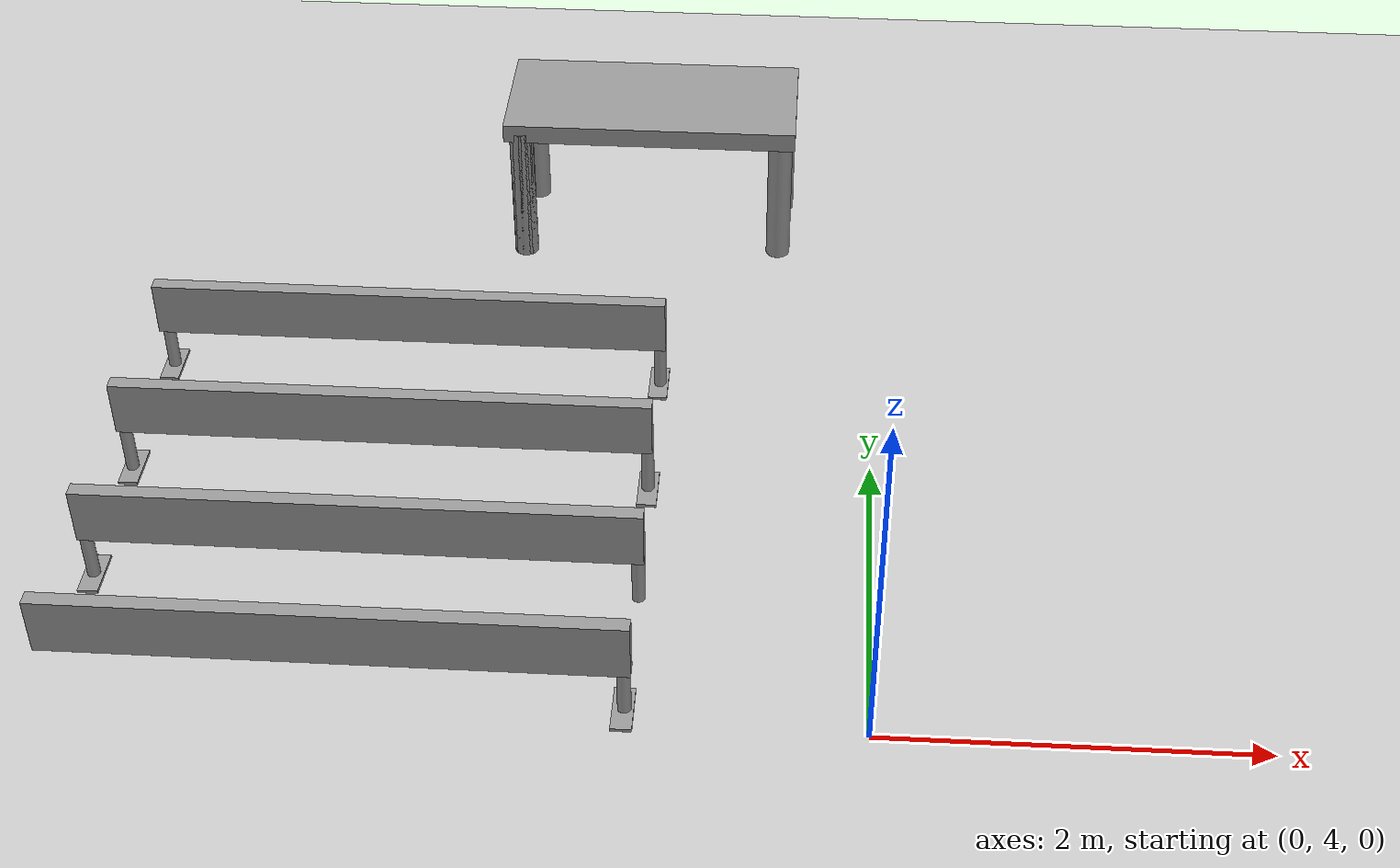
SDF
<sdf version="1.6">
 <world name="default">
  <model name="ground_plane">
   <static>1</static>
   <link name="link">
    <collision name="collision">
     <geometry><plane><normal>0 0 1</normal><size>100 100</size></plane></geometry>
     <surface><friction><ode><mu>100</mu><mu2>50</mu2></ode></friction></surface>
    </collision>
    <visual name="visual">
     <cast_shadows>0</cast_shadows>
     <geometry><plane><normal>0 0 1</normal><size>100 100</size></plane></geometry>
     <material>
      <script><uri>file://media/materials/scripts/gazebo.material</uri><name>Gazebo/Grey</name></script>
     </material>
    </visual>
   </link>
  </model>
  <model name="table">
   <link name="link_0">
    <pose>1.8055 0.833362 1.52998 0 -0 0</pose>
    <inertial>
     <mass>0.45487</mass>
     <inertia>
      <ixx>0.089863</ixx>
      <ixy>0</ixy>
      <ixz>0</ixz>
      <iyy>0.241732</iyy>
      <iyz>0</iyz>
      <izz>0.330549</izz>
     </inertia>
    </inertial>
    <visual name="visual">
     <geometry><box><size>1.8 0.8 0.117454</size></box></geometry>
     <material>
      <lighting>1</lighting>
      <script><uri>file://media/materials/scripts/gazebo.material</uri><name>Gazebo/Grey</name></script>
      <ambient>0.3 0.3 0.3 1</ambient>
      <diffuse>0.7 0.7 0.7 1</diffuse>
      <specular>0.01 0.01 0.01 1</specular>
      <emissive>0 0 0 1</emissive>
      <shader type="vertex"><normal_map>__default__</normal_map></shader>
     </material>
    </visual>
    <collision name="collision">
     <geometry><box><size>1.8 0.8 0.117454</size></box></geometry>
     <surface>
      <friction>
       <ode><mu>1</mu><mu2>1</mu2><fdir1>0 0 0</fdir1><slip1>0</slip1><slip2>0</slip2></ode>
       <torsional>
        <coefficient>1</coefficient>
        <patch_radius>0</patch_radius>
        <surface_radius>0</surface_radius>
        <use_patch_radius>1</use_patch_radius>
        <ode><slip>0</slip></ode>
       </torsional>
      </friction>
      <bounce><restitution_coefficient>0</restitution_coefficient><threshold>1e+06</threshold></bounce>
      <contact>
       <collide_without_contact>0</collide_without_contact>
       <collide_without_contact_bitmask>1</collide_without_contact_bitmask>
       <collide_bitmask>1</collide_bitmask>
       <ode>
        <soft_cfm>0</soft_cfm>
        <soft_erp>0.2</soft_erp>
        <kp>1e+13</kp>
        <kd>1</kd>
        <max_vel>0.01</max_vel>
        <min_depth>0</min_depth>
       </ode>
       <bullet>
        <split_impulse>1</split_impulse>
        <split_impulse_penetration_threshold>-0.01</split_impulse_penetration_threshold>
        <soft_cfm>0</soft_cfm>
        <soft_erp>0.2</soft_erp>
        <kp>1e+13</kp>
        <kd>1</kd>
       </bullet>
      </contact>
     </surface>
    </collision>
   </link>
   <link name="link_1">
    <pose>1.00734 0.496856 1.07514 0 -0 0</pose>
    <inertial>
     <mass>0.0339085</mass>
     <inertia>
      <ixx>0.00689116</ixx>
      <ixy>0</ixy>
      <ixz>0</ixz>
      <iyy>0.00689116</iyy>
      <iyz>0</iyz>
      <izz>9.234e-05</izz>
     </inertia>
    </inertial>
    <visual name="visual">
     <geometry><cylinder><radius>0.073807</radius><length>0.900001</length></cylinder></geometry>
     <material>
      <lighting>1</lighting>
      <script><uri>file://media/materials/scripts/gazebo.material</uri><name>Gazebo/Grey</name></script>
      <ambient>0.3 0.3 0.3 1</ambient>
      <diffuse>0.7 0.7 0.7 1</diffuse>
      <specular>0.01 0.01 0.01 1</specular>
      <emissive>0 0 0 1</emissive>
      <shader type="vertex"><normal_map>__default__</normal_map></shader>
     </material>
    </visual>
    <visual name="ModelPreview_0::link_1::visual_1">
     <geometry><cylinder><radius>0.073807</radius><length>0.9</length></cylinder></geometry>
     <material>
      <lighting>1</lighting>
      <script><uri>file://media/materials/scripts/gazebo.material</uri><name>Gazebo/Grey</name></script>
      <ambient>0.3 0.3 0.3 1</ambient>
      <diffuse>0.7 0.7 0.7 1</diffuse>
      <specular>0.01 0.01 0.01 1</specular>
      <emissive>0 0 0 1</emissive>
      <shader type="vertex"><normal_map>__default__</normal_map></shader>
     </material>
    </visual>
    <collision name="collision">
     <geometry><cylinder><radius>0.073807</radius><length>0.900001</length></cylinder></geometry>
     <surface>
      <friction>
       <ode><mu>1</mu><mu2>1</mu2><fdir1>0 0 0</fdir1><slip1>0</slip1><slip2>0</slip2></ode>
       <torsional>
        <coefficient>1</coefficient>
        <patch_radius>0</patch_radius>
        <surface_radius>0</surface_radius>
        <use_patch_radius>1</use_patch_radius>
        <ode><slip>0</slip></ode>
       </torsional>
      </friction>
      <bounce><restitution_coefficient>0</restitution_coefficient><threshold>1e+06</threshold></bounce>
      <contact>
       <collide_without_contact>0</collide_without_contact>
       <collide_without_contact_bitmask>1</collide_without_contact_bitmask>
       <collide_bitmask>1</collide_bitmask>
       <ode>
        <soft_cfm>0</soft_cfm>
        <soft_erp>0.2</soft_erp>
        <kp>1e+13</kp>
        <kd>1</kd>
        <max_vel>0.01</max_vel>
        <min_depth>0</min_depth>
       </ode>
       <bullet>
        <split_impulse>1</split_impulse>
        <split_impulse_penetration_threshold>-0.01</split_impulse_penetration_threshold>
        <soft_cfm>0</soft_cfm>
        <soft_erp>0.2</soft_erp>
        <kp>1e+13</kp>
        <kd>1</kd>
       </bullet>
      </contact>
     </surface>
    </collision>
   </link>
   <link name="link_1_clone">
    <pose>2.61517 0.570568 1.07431 0 -0 0</pose>
    <inertial>
     <mass>0.0339085</mass>
     <inertia>
      <ixx>0.00689116</ixx>
      <ixy>0</ixy>
      <ixz>0</ixz>
      <iyy>0.00689116</iyy>
      <iyz>0</iyz>
      <izz>9.234e-05</izz>
     </inertia>
    </inertial>
    <visual name="visual">
     <geometry><cylinder><radius>0.073807</radius><length>0.9</length></cylinder></geometry>
     <material>
      <lighting>1</lighting>
      <script><uri>file://media/materials/scripts/gazebo.material</uri><name>Gazebo/Grey</name></script>
      <ambient>0.3 0.3 0.3 1</ambient>
      <diffuse>0.7 0.7 0.7 1</diffuse>
      <specular>0.01 0.01 0.01 1</specular>
      <emissive>0 0 0 1</emissive>
      <shader type="vertex"><normal_map>__default__</normal_map></shader>
     </material>
    </visual>
    <collision name="collision">
     <geometry><cylinder><radius>0.073807</radius><length>0.9</length></cylinder></geometry>
     <surface>
      <friction>
       <ode><mu>1</mu><mu2>1</mu2><fdir1>0 0 0</fdir1><slip1>0</slip1><slip2>0</slip2></ode>
       <torsional>
        <coefficient>1</coefficient>
        <patch_radius>0</patch_radius>
        <surface_radius>0</surface_radius>
        <use_patch_radius>1</use_patch_radius>
        <ode><slip>0</slip></ode>
       </torsional>
      </friction>
      <bounce><restitution_coefficient>0</restitution_coefficient><threshold>1e+06</threshold></bounce>
      <contact>
       <collide_without_contact>0</collide_without_contact>
       <collide_without_contact_bitmask>1</collide_without_contact_bitmask>
       <collide_bitmask>1</collide_bitmask>
       <ode>
        <soft_cfm>0</soft_cfm>
        <soft_erp>0.2</soft_erp>
        <kp>1e+13</kp>
        <kd>1</kd>
        <max_vel>0.01</max_vel>
        <min_depth>0</min_depth>
       </ode>
       <bullet>
        <split_impulse>1</split_impulse>
        <split_impulse_penetration_threshold>-0.01</split_impulse_penetration_threshold>
        <soft_cfm>0</soft_cfm>
        <soft_erp>0.2</soft_erp>
        <kp>1e+13</kp>
        <kd>1</kd>
       </bullet>
      </contact>
     </surface>
    </collision>
   </link>
   <link name="link_1_clone_0">
    <pose>2.62457 1.08492 1.0677 0 -0 0</pose>
    <inertial>
     <mass>0.0339085</mass>
     <inertia>
      <ixx>0.00689116</ixx>
      <ixy>0</ixy>
      <ixz>0</ixz>
      <iyy>0.00689116</iyy>
      <iyz>0</iyz>
      <izz>9.234e-05</izz>
     </inertia>
    </inertial>
    <visual name="visual">
     <geometry><cylinder><radius>0.073807</radius><length>0.9</length></cylinder></geometry>
     <material>
      <lighting>1</lighting>
      <script><uri>file://media/materials/scripts/gazebo.material</uri><name>Gazebo/Grey</name></script>
      <ambient>0.3 0.3 0.3 1</ambient>
      <diffuse>0.7 0.7 0.7 1</diffuse>
      <specular>0.01 0.01 0.01 1</specular>
      <emissive>0 0 0 1</emissive>
      <shader type="vertex"><normal_map>__default__</normal_map></shader>
     </material>
    </visual>
    <collision name="collision">
     <geometry><cylinder><radius>0.073807</radius><length>0.9</length></cylinder></geometry>
     <surface>
      <friction>
       <ode><mu>1</mu><mu2>1</mu2><fdir1>0 0 0</fdir1><slip1>0</slip1><slip2>0</slip2></ode>
       <torsional>
        <coefficient>1</coefficient>
        <patch_radius>0</patch_radius>
        <surface_radius>0</surface_radius>
        <use_patch_radius>1</use_patch_radius>
        <ode><slip>0</slip></ode>
       </torsional>
      </friction>
      <bounce><restitution_coefficient>0</restitution_coefficient><threshold>1e+06</threshold></bounce>
      <contact>
       <collide_without_contact>0</collide_without_contact>
       <collide_without_contact_bitmask>1</collide_without_contact_bitmask>
       <collide_bitmask>1</collide_bitmask>
       <ode>
        <soft_cfm>0</soft_cfm>
        <soft_erp>0.2</soft_erp>
        <kp>1e+13</kp>
        <kd>1</kd>
        <max_vel>0.01</max_vel>
        <min_depth>0</min_depth>
       </ode>
       <bullet>
        <split_impulse>1</split_impulse>
        <split_impulse_penetration_threshold>-0.01</split_impulse_penetration_threshold>
        <soft_cfm>0</soft_cfm>
        <soft_erp>0.2</soft_erp>
        <kp>1e+13</kp>
        <kd>1</kd>
       </bullet>
      </contact>
     </surface>
    </collision>
   </link>
   <link name="link_1_clone_1">
    <pose>1.01114 1.15421 1.07072 0 -0 0</pose>
    <inertial>
     <mass>0.0339085</mass>
     <inertia>
      <ixx>0.00689116</ixx>
      <ixy>0</ixy>
      <ixz>0</ixz>
      <iyy>0.00689116</iyy>
      <iyz>0</iyz>
      <izz>9.234e-05</izz>
     </inertia>
    </inertial>
    <visual name="visual">
     <geometry><cylinder><radius>0.073807</radius><length>0.9</length></cylinder></geometry>
     <material>
      <lighting>1</lighting>
      <script><uri>file://media/materials/scripts/gazebo.material</uri><name>Gazebo/Grey</name></script>
      <ambient>0.3 0.3 0.3 1</ambient>
      <diffuse>0.7 0.7 0.7 1</diffuse>
      <specular>0.01 0.01 0.01 1</specular>
      <emissive>0 0 0 1</emissive>
      <shader type="vertex"><normal_map>__default__</normal_map></shader>
     </material>
    </visual>
    <collision name="collision">
     <geometry><cylinder><radius>0.073807</radius><length>0.9</length></cylinder></geometry>
     <surface>
      <friction>
       <ode><mu>1</mu><mu2>1</mu2><fdir1>0 0 0</fdir1><slip1>0</slip1><slip2>0</slip2></ode>
       <torsional>
        <coefficient>1</coefficient>
        <patch_radius>0</patch_radius>
        <surface_radius>0</surface_radius>
        <use_patch_radius>1</use_patch_radius>
        <ode><slip>0</slip></ode>
       </torsional>
      </friction>
      <bounce><restitution_coefficient>0</restitution_coefficient><threshold>1e+06</threshold></bounce>
      <contact>
       <collide_without_contact>0</collide_without_contact>
       <collide_without_contact_bitmask>1</collide_without_contact_bitmask>
       <collide_bitmask>1</collide_bitmask>
       <ode>
        <soft_cfm>0</soft_cfm>
        <soft_erp>0.2</soft_erp>
        <kp>1e+13</kp>
        <kd>1</kd>
        <max_vel>0.01</max_vel>
        <min_depth>0</min_depth>
       </ode>
       <bullet>
        <split_impulse>1</split_impulse>
        <split_impulse_penetration_threshold>-0.01</split_impulse_penetration_threshold>
        <soft_cfm>0</soft_cfm>
        <soft_erp>0.2</soft_erp>
        <kp>1e+13</kp>
        <kd>1</kd>
       </bullet>
      </contact>
     </surface>
    </collision>
   </link>
   <static>1</static>
   <pose>-3.20427 7.53023 -0.629836 0 -0 0</pose>
  </model>
  <model name="banchi">
   <link name="link_0_clone_14">
    <inertial>
     <mass>0.000785881</mass>
     <inertia>
      <ixx>5.11476e-06</ixx>
      <ixy>0</ixy>
      <ixz>0</ixz>
      <iyy>8.37345e-07</iyy>
      <iyz>0</iyz>
      <izz>5.8658e-06</izz>
     </inertia>
    </inertial>
    <pose>-1.75959 -2.54035 -0.495327 0 -0 0</pose>
    <visual name="visual">
     <geometry><box><size>0.110122 0.278282 0.025669</size></box></geometry>
     <material>
      <lighting>1</lighting>
      <script><uri>file://media/materials/scripts/gazebo.material</uri><name>Gazebo/Grey</name></script>
      <shader type="pixel"/>
     </material>
    </visual>
    <collision name="collision">
     <geometry><box><size>0.110122 0.278282 0.025669</size></box></geometry>
     <surface>
      <friction>
       <ode><mu>1</mu><mu2>1</mu2><fdir1>0 0 0</fdir1><slip1>0</slip1><slip2>0</slip2></ode>
       <torsional>
        <coefficient>1</coefficient>
        <patch_radius>0</patch_radius>
        <surface_radius>0</surface_radius>
        <use_patch_radius>1</use_patch_radius>
        <ode><slip>0</slip></ode>
       </torsional>
      </friction>
      <bounce><restitution_coefficient>0</restitution_coefficient><threshold>1e+06</threshold></bounce>
      <contact>
       <collide_without_contact>0</collide_without_contact>
       <collide_without_contact_bitmask>1</collide_without_contact_bitmask>
       <collide_bitmask>1</collide_bitmask>
       <ode>
        <soft_cfm>0</soft_cfm>
        <soft_erp>0.2</soft_erp>
        <kp>1e+13</kp>
        <kd>1</kd>
        <max_vel>0.01</max_vel>
        <min_depth>0</min_depth>
       </ode>
       <bullet>
        <split_impulse>1</split_impulse>
        <split_impulse_penetration_threshold>-0.01</split_impulse_penetration_threshold>
        <soft_cfm>0</soft_cfm>
        <soft_erp>0.2</soft_erp>
        <kp>1e+13</kp>
        <kd>1</kd>
       </bullet>
      </contact>
     </surface>
    </collision>
   </link>
   <link name="link_0_clone_15">
    <inertial>
     <mass>0.000785881</mass>
     <inertia>
      <ixx>5.11476e-06</ixx>
      <ixy>0</ixy>
      <ixz>0</ixz>
      <iyy>8.37345e-07</iyy>
      <iyz>0</iyz>
      <izz>5.8658e-06</izz>
     </inertia>
    </inertial>
    <pose>-1.75172 -3.47821 -0.495327 0 -0 0</pose>
    <visual name="visual">
     <geometry><box><size>0.110122 0.278282 0.025669</size></box></geometry>
     <material>
      <lighting>1</lighting>
      <script><uri>file://media/materials/scripts/gazebo.material</uri><name>Gazebo/Grey</name></script>
      <shader type="pixel"/>
     </material>
    </visual>
    <collision name="collision">
     <geometry><box><size>0.110122 0.278282 0.025669</size></box></geometry>
     <surface>
      <friction>
       <ode><mu>1</mu><mu2>1</mu2><fdir1>0 0 0</fdir1><slip1>0</slip1><slip2>0</slip2></ode>
       <torsional>
        <coefficient>1</coefficient>
        <patch_radius>0</patch_radius>
        <surface_radius>0</surface_radius>
        <use_patch_radius>1</use_patch_radius>
        <ode><slip>0</slip></ode>
       </torsional>
      </friction>
      <bounce><restitution_coefficient>0</restitution_coefficient><threshold>1e+06</threshold></bounce>
      <contact>
       <collide_without_contact>0</collide_without_contact>
       <collide_without_contact_bitmask>1</collide_without_contact_bitmask>
       <collide_bitmask>1</collide_bitmask>
       <ode>
        <soft_cfm>0</soft_cfm>
        <soft_erp>0.2</soft_erp>
        <kp>1e+13</kp>
        <kd>1</kd>
        <max_vel>0.01</max_vel>
        <min_depth>0</min_depth>
       </ode>
       <bullet>
        <split_impulse>1</split_impulse>
        <split_impulse_penetration_threshold>-0.01</split_impulse_penetration_threshold>
        <soft_cfm>0</soft_cfm>
        <soft_erp>0.2</soft_erp>
        <kp>1e+13</kp>
        <kd>1</kd>
       </bullet>
      </contact>
     </surface>
    </collision>
   </link>
   <link name="link_0_clone_17">
    <inertial>
     <mass>0.000785881</mass>
     <inertia>
      <ixx>5.11476e-06</ixx>
      <ixy>0</ixy>
      <ixz>0</ixz>
      <iyy>8.37345e-07</iyy>
      <iyz>0</iyz>
      <izz>5.8658e-06</izz>
     </inertia>
    </inertial>
    <pose>-1.74948 -5.13394 -0.495327 0 -0 0</pose>
    <visual name="visual">
     <geometry><box><size>0.110122 0.278282 0.025669</size></box></geometry>
     <material>
      <lighting>1</lighting>
      <script><uri>file://media/materials/scripts/gazebo.material</uri><name>Gazebo/Grey</name></script>
      <shader type="pixel"/>
     </material>
    </visual>
    <collision name="collision">
     <geometry><box><size>0.110122 0.278282 0.025669</size></box></geometry>
     <surface>
      <friction>
       <ode><mu>1</mu><mu2>1</mu2><fdir1>0 0 0</fdir1><slip1>0</slip1><slip2>0</slip2></ode>
       <torsional>
        <coefficient>1</coefficient>
        <patch_radius>0</patch_radius>
        <surface_radius>0</surface_radius>
        <use_patch_radius>1</use_patch_radius>
        <ode><slip>0</slip></ode>
       </torsional>
      </friction>
      <bounce><restitution_coefficient>0</restitution_coefficient><threshold>1e+06</threshold></bounce>
      <contact>
       <collide_without_contact>0</collide_without_contact>
       <collide_without_contact_bitmask>1</collide_without_contact_bitmask>
       <collide_bitmask>1</collide_bitmask>
       <ode>
        <soft_cfm>0</soft_cfm>
        <soft_erp>0.2</soft_erp>
        <kp>1e+13</kp>
        <kd>1</kd>
        <max_vel>0.01</max_vel>
        <min_depth>0</min_depth>
       </ode>
       <bullet>
        <split_impulse>1</split_impulse>
        <split_impulse_penetration_threshold>-0.01</split_impulse_penetration_threshold>
        <soft_cfm>0</soft_cfm>
        <soft_erp>0.2</soft_erp>
        <kp>1e+13</kp>
        <kd>1</kd>
       </bullet>
      </contact>
     </surface>
    </collision>
   </link>
   <link name="link_0_clone_27">
    <inertial>
     <mass>0.000785881</mass>
     <inertia>
      <ixx>5.11476e-06</ixx>
      <ixy>0</ixy>
      <ixz>0</ixz>
      <iyy>8.37345e-07</iyy>
      <iyz>0</iyz>
      <izz>5.8658e-06</izz>
     </inertia>
    </inertial>
    <pose>-4.66477 -4.33939 -0.495327 0 -0 0</pose>
    <visual name="visual">
     <geometry><box><size>0.110122 0.278282 0.025669</size></box></geometry>
     <material>
      <lighting>1</lighting>
      <script><uri>file://media/materials/scripts/gazebo.material</uri><name>Gazebo/Grey</name></script>
      <shader type="pixel"/>
     </material>
    </visual>
    <collision name="collision">
     <geometry><box><size>0.110122 0.278282 0.025669</size></box></geometry>
     <surface>
      <friction>
       <ode><mu>1</mu><mu2>1</mu2><fdir1>0 0 0</fdir1><slip1>0</slip1><slip2>0</slip2></ode>
       <torsional>
        <coefficient>1</coefficient>
        <patch_radius>0</patch_radius>
        <surface_radius>0</surface_radius>
        <use_patch_radius>1</use_patch_radius>
        <ode><slip>0</slip></ode>
       </torsional>
      </friction>
      <bounce><restitution_coefficient>0</restitution_coefficient><threshold>1e+06</threshold></bounce>
      <contact>
       <collide_without_contact>0</collide_without_contact>
       <collide_without_contact_bitmask>1</collide_without_contact_bitmask>
       <collide_bitmask>1</collide_bitmask>
       <ode>
        <soft_cfm>0</soft_cfm>
        <soft_erp>0.2</soft_erp>
        <kp>1e+13</kp>
        <kd>1</kd>
        <max_vel>0.01</max_vel>
        <min_depth>0</min_depth>
       </ode>
       <bullet>
        <split_impulse>1</split_impulse>
        <split_impulse_penetration_threshold>-0.01</split_impulse_penetration_threshold>
        <soft_cfm>0</soft_cfm>
        <soft_erp>0.2</soft_erp>
        <kp>1e+13</kp>
        <kd>1</kd>
       </bullet>
      </contact>
     </surface>
    </collision>
   </link>
   <link name="link_0_clone_28">
    <inertial>
     <mass>0.000785881</mass>
     <inertia>
      <ixx>5.11476e-06</ixx>
      <ixy>0</ixy>
      <ixz>0</ixz>
      <iyy>8.37345e-07</iyy>
      <iyz>0</iyz>
      <izz>5.8658e-06</izz>
     </inertia>
    </inertial>
    <pose>-4.67715 -3.47463 -0.495327 0 -0 0</pose>
    <visual name="visual">
     <geometry><box><size>0.110122 0.278282 0.025669</size></box></geometry>
     <material>
      <lighting>1</lighting>
      <script><uri>file://media/materials/scripts/gazebo.material</uri><name>Gazebo/Grey</name></script>
      <shader type="pixel"/>
     </material>
    </visual>
    <collision name="collision">
     <geometry><box><size>0.110122 0.278282 0.025669</size></box></geometry>
     <surface>
      <friction>
       <ode><mu>1</mu><mu2>1</mu2><fdir1>0 0 0</fdir1><slip1>0</slip1><slip2>0</slip2></ode>
       <torsional>
        <coefficient>1</coefficient>
        <patch_radius>0</patch_radius>
        <surface_radius>0</surface_radius>
        <use_patch_radius>1</use_patch_radius>
        <ode><slip>0</slip></ode>
       </torsional>
      </friction>
      <bounce><restitution_coefficient>0</restitution_coefficient><threshold>1e+06</threshold></bounce>
      <contact>
       <collide_without_contact>0</collide_without_contact>
       <collide_without_contact_bitmask>1</collide_without_contact_bitmask>
       <collide_bitmask>1</collide_bitmask>
       <ode>
        <soft_cfm>0</soft_cfm>
        <soft_erp>0.2</soft_erp>
        <kp>1e+13</kp>
        <kd>1</kd>
        <max_vel>0.01</max_vel>
        <min_depth>0</min_depth>
       </ode>
       <bullet>
        <split_impulse>1</split_impulse>
        <split_impulse_penetration_threshold>-0.01</split_impulse_penetration_threshold>
        <soft_cfm>0</soft_cfm>
        <soft_erp>0.2</soft_erp>
        <kp>1e+13</kp>
        <kd>1</kd>
       </bullet>
      </contact>
     </surface>
    </collision>
   </link>
   <link name="link_0_clone_29">
    <inertial>
     <mass>0.000785881</mass>
     <inertia>
      <ixx>5.11476e-06</ixx>
      <ixy>0</ixy>
      <ixz>0</ixz>
      <iyy>8.37345e-07</iyy>
      <iyz>0</iyz>
      <izz>5.8658e-06</izz>
     </inertia>
    </inertial>
    <pose>-4.67502 -2.53758 -0.495327 0 -0 0</pose>
    <visual name="visual">
     <geometry><box><size>0.110122 0.278282 0.025669</size></box></geometry>
     <material>
      <lighting>1</lighting>
      <script><uri>file://media/materials/scripts/gazebo.material</uri><name>Gazebo/Grey</name></script>
      <shader type="pixel"/>
     </material>
    </visual>
    <collision name="collision">
     <geometry><box><size>0.110122 0.278282 0.025669</size></box></geometry>
     <surface>
      <friction>
       <ode><mu>1</mu><mu2>1</mu2><fdir1>0 0 0</fdir1><slip1>0</slip1><slip2>0</slip2></ode>
       <torsional>
        <coefficient>1</coefficient>
        <patch_radius>0</patch_radius>
        <surface_radius>0</surface_radius>
        <use_patch_radius>1</use_patch_radius>
        <ode><slip>0</slip></ode>
       </torsional>
      </friction>
      <bounce><restitution_coefficient>0</restitution_coefficient><threshold>1e+06</threshold></bounce>
      <contact>
       <collide_without_contact>0</collide_without_contact>
       <collide_without_contact_bitmask>1</collide_without_contact_bitmask>
       <collide_bitmask>1</collide_bitmask>
       <ode>
        <soft_cfm>0</soft_cfm>
        <soft_erp>0.2</soft_erp>
        <kp>1e+13</kp>
        <kd>1</kd>
        <max_vel>0.01</max_vel>
        <min_depth>0</min_depth>
       </ode>
       <bullet>
        <split_impulse>1</split_impulse>
        <split_impulse_penetration_threshold>-0.01</split_impulse_penetration_threshold>
        <soft_cfm>0</soft_cfm>
        <soft_erp>0.2</soft_erp>
        <kp>1e+13</kp>
        <kd>1</kd>
       </bullet>
      </contact>
     </surface>
    </collision>
   </link>
   <link name="link_6_clone_clone_3_clone_0">
    <pose>-3.21741 -2.54032 -0.048661 0 -0 0</pose>
    <inertial>
     <mass>0.0822689</mass>
     <inertia>
      <ixx>0.00690216</ixx>
      <ixy>0</ixy>
      <ixz>0</ixz>
      <iyy>0.0137115</iyy>
      <iyz>0</iyz>
      <izz>0.00690216</izz>
     </inertia>
    </inertial>
    <visual name="visual">
     <geometry><box><size>3 0.082269 0.32559</size></box></geometry>
     <material>
      <lighting>1</lighting>
      <script><uri>file://media/materials/scripts/gazebo.material</uri><name>Gazebo/Grey</name></script>
      <ambient>0.3 0.3 0.3 1</ambient>
      <diffuse>0.7 0.7 0.7 1</diffuse>
      <specular>0.01 0.01 0.01 1</specular>
      <emissive>0 0 0 1</emissive>
      <shader type="vertex"><normal_map>__default__</normal_map></shader>
     </material>
    </visual>
    <collision name="collision">
     <geometry><box><size>3 0.082269 0.32559</size></box></geometry>
     <surface>
      <friction>
       <ode><mu>1</mu><mu2>1</mu2><fdir1>0 0 0</fdir1><slip1>0</slip1><slip2>0</slip2></ode>
       <torsional>
        <coefficient>1</coefficient>
        <patch_radius>0</patch_radius>
        <surface_radius>0</surface_radius>
        <use_patch_radius>1</use_patch_radius>
        <ode><slip>0</slip></ode>
       </torsional>
      </friction>
      <bounce><restitution_coefficient>0</restitution_coefficient><threshold>1e+06</threshold></bounce>
      <contact>
       <collide_without_contact>0</collide_without_contact>
       <collide_without_contact_bitmask>1</collide_without_contact_bitmask>
       <collide_bitmask>1</collide_bitmask>
       <ode>
        <soft_cfm>0</soft_cfm>
        <soft_erp>0.2</soft_erp>
        <kp>1e+13</kp>
        <kd>1</kd>
        <max_vel>0.01</max_vel>
        <min_depth>0</min_depth>
       </ode>
       <bullet>
        <split_impulse>1</split_impulse>
        <split_impulse_penetration_threshold>-0.01</split_impulse_penetration_threshold>
        <soft_cfm>0</soft_cfm>
        <soft_erp>0.2</soft_erp>
        <kp>1e+13</kp>
        <kd>1</kd>
       </bullet>
      </contact>
     </surface>
    </collision>
   </link>
   <link name="link_6_clone_clone_4">
    <pose>-3.22275 -3.47335 -0.034195 0 -0 0</pose>
    <inertial>
     <mass>0.0822689</mass>
     <inertia>
      <ixx>0.00690216</ixx>
      <ixy>0</ixy>
      <ixz>0</ixz>
      <iyy>0.0137115</iyy>
      <iyz>0</iyz>
      <izz>0.00690216</izz>
     </inertia>
    </inertial>
    <visual name="visual">
     <geometry><box><size>3 0.082269 0.32559</size></box></geometry>
     <material>
      <lighting>1</lighting>
      <script><uri>file://media/materials/scripts/gazebo.material</uri><name>Gazebo/Grey</name></script>
      <ambient>0.3 0.3 0.3 1</ambient>
      <diffuse>0.7 0.7 0.7 1</diffuse>
      <specular>0.01 0.01 0.01 1</specular>
      <emissive>0 0 0 1</emissive>
      <shader type="vertex"><normal_map>__default__</normal_map></shader>
     </material>
    </visual>
    <collision name="collision">
     <geometry><box><size>3 0.082269 0.32559</size></box></geometry>
     <surface>
      <friction>
       <ode><mu>1</mu><mu2>1</mu2><fdir1>0 0 0</fdir1><slip1>0</slip1><slip2>0</slip2></ode>
       <torsional>
        <coefficient>1</coefficient>
        <patch_radius>0</patch_radius>
        <surface_radius>0</surface_radius>
        <use_patch_radius>1</use_patch_radius>
        <ode><slip>0</slip></ode>
       </torsional>
      </friction>
      <bounce><restitution_coefficient>0</restitution_coefficient><threshold>1e+06</threshold></bounce>
      <contact>
       <collide_without_contact>0</collide_without_contact>
       <collide_without_contact_bitmask>1</collide_without_contact_bitmask>
       <collide_bitmask>1</collide_bitmask>
       <ode>
        <soft_cfm>0</soft_cfm>
        <soft_erp>0.2</soft_erp>
        <kp>1e+13</kp>
        <kd>1</kd>
        <max_vel>0.01</max_vel>
        <min_depth>0</min_depth>
       </ode>
       <bullet>
        <split_impulse>1</split_impulse>
        <split_impulse_penetration_threshold>-0.01</split_impulse_penetration_threshold>
        <soft_cfm>0</soft_cfm>
        <soft_erp>0.2</soft_erp>
        <kp>1e+13</kp>
        <kd>1</kd>
       </bullet>
      </contact>
     </surface>
    </collision>
   </link>
   <link name="link_6_clone_clone_4_clone">
    <pose>-3.19955 -4.34202 -0.043079 0 -0 0</pose>
    <inertial>
     <mass>0.0822689</mass>
     <inertia>
      <ixx>0.00690216</ixx>
      <ixy>0</ixy>
      <ixz>0</ixz>
      <iyy>0.0137115</iyy>
      <iyz>0</iyz>
      <izz>0.00690216</izz>
     </inertia>
    </inertial>
    <visual name="visual">
     <geometry><box><size>3 0.082269 0.32559</size></box></geometry>
     <material>
      <lighting>1</lighting>
      <script><uri>file://media/materials/scripts/gazebo.material</uri><name>Gazebo/Grey</name></script>
      <ambient>0.3 0.3 0.3 1</ambient>
      <diffuse>0.7 0.7 0.7 1</diffuse>
      <specular>0.01 0.01 0.01 1</specular>
      <emissive>0 0 0 1</emissive>
      <shader type="vertex"><normal_map>__default__</normal_map></shader>
     </material>
    </visual>
    <collision name="collision">
     <geometry><box><size>3 0.082269 0.32559</size></box></geometry>
     <surface>
      <friction>
       <ode><mu>1</mu><mu2>1</mu2><fdir1>0 0 0</fdir1><slip1>0</slip1><slip2>0</slip2></ode>
       <torsional>
        <coefficient>1</coefficient>
        <patch_radius>0</patch_radius>
        <surface_radius>0</surface_radius>
        <use_patch_radius>1</use_patch_radius>
        <ode><slip>0</slip></ode>
       </torsional>
      </friction>
      <bounce><restitution_coefficient>0</restitution_coefficient><threshold>1e+06</threshold></bounce>
      <contact>
       <collide_without_contact>0</collide_without_contact>
       <collide_without_contact_bitmask>1</collide_without_contact_bitmask>
       <collide_bitmask>1</collide_bitmask>
       <ode>
        <soft_cfm>0</soft_cfm>
        <soft_erp>0.2</soft_erp>
        <kp>1e+13</kp>
        <kd>1</kd>
        <max_vel>0.01</max_vel>
        <min_depth>0</min_depth>
       </ode>
       <bullet>
        <split_impulse>1</split_impulse>
        <split_impulse_penetration_threshold>-0.01</split_impulse_penetration_threshold>
        <soft_cfm>0</soft_cfm>
        <soft_erp>0.2</soft_erp>
        <kp>1e+13</kp>
        <kd>1</kd>
       </bullet>
      </contact>
     </surface>
    </collision>
   </link>
   <link name="link_6_clone_clone_4_clone_0">
    <pose>-3.20261 -5.13275 -0.051777 0 -0 0</pose>
    <inertial>
     <mass>0.0822689</mass>
     <inertia>
      <ixx>0.00690216</ixx>
      <ixy>0</ixy>
      <ixz>0</ixz>
      <iyy>0.0137115</iyy>
      <iyz>0</iyz>
      <izz>0.00690216</izz>
     </inertia>
    </inertial>
    <visual name="visual">
     <geometry><box><size>3 0.082269 0.32559</size></box></geometry>
     <material>
      <lighting>1</lighting>
      <script><uri>file://media/materials/scripts/gazebo.material</uri><name>Gazebo/Grey</name></script>
      <ambient>0.3 0.3 0.3 1</ambient>
      <diffuse>0.7 0.7 0.7 1</diffuse>
      <specular>0.01 0.01 0.01 1</specular>
      <emissive>0 0 0 1</emissive>
      <shader type="vertex"><normal_map>__default__</normal_map></shader>
     </material>
    </visual>
    <collision name="collision">
     <geometry><box><size>3 0.082269 0.32559</size></box></geometry>
     <surface>
      <friction>
       <ode><mu>1</mu><mu2>1</mu2><fdir1>0 0 0</fdir1><slip1>0</slip1><slip2>0</slip2></ode>
       <torsional>
        <coefficient>1</coefficient>
        <patch_radius>0</patch_radius>
        <surface_radius>0</surface_radius>
        <use_patch_radius>1</use_patch_radius>
        <ode><slip>0</slip></ode>
       </torsional>
      </friction>
      <bounce><restitution_coefficient>0</restitution_coefficient><threshold>1e+06</threshold></bounce>
      <contact>
       <collide_without_contact>0</collide_without_contact>
       <collide_without_contact_bitmask>1</collide_without_contact_bitmask>
       <collide_bitmask>1</collide_bitmask>
       <ode>
        <soft_cfm>0</soft_cfm>
        <soft_erp>0.2</soft_erp>
        <kp>1e+13</kp>
        <kd>1</kd>
        <max_vel>0.01</max_vel>
        <min_depth>0</min_depth>
       </ode>
       <bullet>
        <split_impulse>1</split_impulse>
        <split_impulse_penetration_threshold>-0.01</split_impulse_penetration_threshold>
        <soft_cfm>0</soft_cfm>
        <soft_erp>0.2</soft_erp>
        <kp>1e+13</kp>
        <kd>1</kd>
       </bullet>
      </contact>
     </surface>
    </collision>
   </link>
   <link name="link_7_clone_2_clone">
    <pose>-1.74219 -5.13182 -0.350253 0 -0 0</pose>
    <inertial>
     <mass>0.00501927</mass>
     <inertia>
      <ixx>0.000419846</ixx>
      <ixy>0</ixy>
      <ixz>0</ixz>
      <iyy>0.000419846</iyy>
      <iyz>0</iyz>
      <izz>3.14914e-06</izz>
     </inertia>
    </inertial>
    <visual name="visual">
     <geometry><cylinder><radius>0.0354247</radius><length>0.3</length></cylinder></geometry>
     <material>
      <lighting>1</lighting>
      <script><uri>file://media/materials/scripts/gazebo.material</uri><name>Gazebo/Grey</name></script>
      <ambient>0.3 0.3 0.3 1</ambient>
      <diffuse>0.7 0.7 0.7 1</diffuse>
      <specular>0.01 0.01 0.01 1</specular>
      <emissive>0 0 0 1</emissive>
      <shader type="vertex"><normal_map>__default__</normal_map></shader>
     </material>
    </visual>
    <collision name="collision">
     <geometry><cylinder><radius>0.035425</radius><length>0.3</length></cylinder></geometry>
     <surface>
      <friction>
       <ode><mu>1</mu><mu2>1</mu2><fdir1>0 0 0</fdir1><slip1>0</slip1><slip2>0</slip2></ode>
       <torsional>
        <coefficient>1</coefficient>
        <patch_radius>0</patch_radius>
        <surface_radius>0</surface_radius>
        <use_patch_radius>1</use_patch_radius>
        <ode><slip>0</slip></ode>
       </torsional>
      </friction>
      <bounce><restitution_coefficient>0</restitution_coefficient><threshold>1e+06</threshold></bounce>
      <contact>
       <collide_without_contact>0</collide_without_contact>
       <collide_without_contact_bitmask>1</collide_without_contact_bitmask>
       <collide_bitmask>1</collide_bitmask>
       <ode>
        <soft_cfm>0</soft_cfm>
        <soft_erp>0.2</soft_erp>
        <kp>1e+13</kp>
        <kd>1</kd>
        <max_vel>0.01</max_vel>
        <min_depth>0</min_depth>
       </ode>
       <bullet>
        <split_impulse>1</split_impulse>
        <split_impulse_penetration_threshold>-0.01</split_impulse_penetration_threshold>
        <soft_cfm>0</soft_cfm>
        <soft_erp>0.2</soft_erp>
        <kp>1e+13</kp>
        <kd>1</kd>
       </bullet>
      </contact>
     </surface>
    </collision>
   </link>
   <link name="link_7_clone_2_clone_0">
    <pose>-1.73348 -4.33789 -0.341 0 -0 0</pose>
    <inertial>
     <mass>0.00501927</mass>
     <inertia>
      <ixx>0.000419846</ixx>
      <ixy>0</ixy>
      <ixz>0</ixz>
      <iyy>0.000419846</iyy>
      <iyz>0</iyz>
      <izz>3.14914e-06</izz>
     </inertia>
    </inertial>
    <visual name="visual">
     <geometry><cylinder><radius>0.0354247</radius><length>0.3</length></cylinder></geometry>
     <material>
      <lighting>1</lighting>
      <script><uri>file://media/materials/scripts/gazebo.material</uri><name>Gazebo/Grey</name></script>
      <ambient>0.3 0.3 0.3 1</ambient>
      <diffuse>0.7 0.7 0.7 1</diffuse>
      <specular>0.01 0.01 0.01 1</specular>
      <emissive>0 0 0 1</emissive>
      <shader type="vertex"><normal_map>__default__</normal_map></shader>
     </material>
    </visual>
    <collision name="collision">
     <geometry><cylinder><radius>0.035425</radius><length>0.3</length></cylinder></geometry>
     <surface>
      <friction>
       <ode><mu>1</mu><mu2>1</mu2><fdir1>0 0 0</fdir1><slip1>0</slip1><slip2>0</slip2></ode>
       <torsional>
        <coefficient>1</coefficient>
        <patch_radius>0</patch_radius>
        <surface_radius>0</surface_radius>
        <use_patch_radius>1</use_patch_radius>
        <ode><slip>0</slip></ode>
       </torsional>
      </friction>
      <bounce><restitution_coefficient>0</restitution_coefficient><threshold>1e+06</threshold></bounce>
      <contact>
       <collide_without_contact>0</collide_without_contact>
       <collide_without_contact_bitmask>1</collide_without_contact_bitmask>
       <collide_bitmask>1</collide_bitmask>
       <ode>
        <soft_cfm>0</soft_cfm>
        <soft_erp>0.2</soft_erp>
        <kp>1e+13</kp>
        <kd>1</kd>
        <max_vel>0.01</max_vel>
        <min_depth>0</min_depth>
       </ode>
       <bullet>
        <split_impulse>1</split_impulse>
        <split_impulse_penetration_threshold>-0.01</split_impulse_penetration_threshold>
        <soft_cfm>0</soft_cfm>
        <soft_erp>0.2</soft_erp>
        <kp>1e+13</kp>
        <kd>1</kd>
       </bullet>
      </contact>
     </surface>
    </collision>
   </link>
   <link name="link_7_clone_2_clone_1">
    <pose>-1.75227 -3.47358 -0.332822 0 -0 0</pose>
    <inertial>
     <mass>0.00501927</mass>
     <inertia>
      <ixx>0.000419846</ixx>
      <ixy>0</ixy>
      <ixz>0</ixz>
      <iyy>0.000419846</iyy>
      <iyz>0</iyz>
      <izz>3.14914e-06</izz>
     </inertia>
    </inertial>
    <visual name="visual">
     <geometry><cylinder><radius>0.0354247</radius><length>0.3</length></cylinder></geometry>
     <material>
      <lighting>1</lighting>
      <script><uri>file://media/materials/scripts/gazebo.material</uri><name>Gazebo/Grey</name></script>
      <ambient>0.3 0.3 0.3 1</ambient>
      <diffuse>0.7 0.7 0.7 1</diffuse>
      <specular>0.01 0.01 0.01 1</specular>
      <emissive>0 0 0 1</emissive>
      <shader type="vertex"><normal_map>__default__</normal_map></shader>
     </material>
    </visual>
    <collision name="collision">
     <geometry><cylinder><radius>0.035425</radius><length>0.3</length></cylinder></geometry>
     <surface>
      <friction>
       <ode><mu>1</mu><mu2>1</mu2><fdir1>0 0 0</fdir1><slip1>0</slip1><slip2>0</slip2></ode>
       <torsional>
        <coefficient>1</coefficient>
        <patch_radius>0</patch_radius>
        <surface_radius>0</surface_radius>
        <use_patch_radius>1</use_patch_radius>
        <ode><slip>0</slip></ode>
       </torsional>
      </friction>
      <bounce><restitution_coefficient>0</restitution_coefficient><threshold>1e+06</threshold></bounce>
      <contact>
       <collide_without_contact>0</collide_without_contact>
       <collide_without_contact_bitmask>1</collide_without_contact_bitmask>
       <collide_bitmask>1</collide_bitmask>
       <ode>
        <soft_cfm>0</soft_cfm>
        <soft_erp>0.2</soft_erp>
        <kp>1e+13</kp>
        <kd>1</kd>
        <max_vel>0.01</max_vel>
        <min_depth>0</min_depth>
       </ode>
       <bullet>
        <split_impulse>1</split_impulse>
        <split_impulse_penetration_threshold>-0.01</split_impulse_penetration_threshold>
        <soft_cfm>0</soft_cfm>
        <soft_erp>0.2</soft_erp>
        <kp>1e+13</kp>
        <kd>1</kd>
       </bullet>
      </contact>
     </surface>
    </collision>
   </link>
   <link name="link_7_clone_2_clone_19">
    <pose>-4.67169 -2.53692 -0.351715 0 -0 0</pose>
    <inertial>
     <mass>0.00501927</mass>
     <inertia>
      <ixx>0.000419846</ixx>
      <ixy>0</ixy>
      <ixz>0</ixz>
      <iyy>0.000419846</iyy>
      <iyz>0</iyz>
      <izz>3.14914e-06</izz>
     </inertia>
    </inertial>
    <visual name="visual">
     <geometry><cylinder><radius>0.0354247</radius><length>0.3</length></cylinder></geometry>
     <material>
      <lighting>1</lighting>
      <script><uri>file://media/materials/scripts/gazebo.material</uri><name>Gazebo/Grey</name></script>
      <ambient>0.3 0.3 0.3 1</ambient>
      <diffuse>0.7 0.7 0.7 1</diffuse>
      <specular>0.01 0.01 0.01 1</specular>
      <emissive>0 0 0 1</emissive>
      <shader type="vertex"><normal_map>__default__</normal_map></shader>
     </material>
    </visual>
    <collision name="collision">
     <geometry><cylinder><radius>0.035425</radius><length>0.3</length></cylinder></geometry>
     <surface>
      <friction>
       <ode><mu>1</mu><mu2>1</mu2><fdir1>0 0 0</fdir1><slip1>0</slip1><slip2>0</slip2></ode>
       <torsional>
        <coefficient>1</coefficient>
        <patch_radius>0</patch_radius>
        <surface_radius>0</surface_radius>
        <use_patch_radius>1</use_patch_radius>
        <ode><slip>0</slip></ode>
       </torsional>
      </friction>
      <bounce><restitution_coefficient>0</restitution_coefficient><threshold>1e+06</threshold></bounce>
      <contact>
       <collide_without_contact>0</collide_without_contact>
       <collide_without_contact_bitmask>1</collide_without_contact_bitmask>
       <collide_bitmask>1</collide_bitmask>
       <ode>
        <soft_cfm>0</soft_cfm>
        <soft_erp>0.2</soft_erp>
        <kp>1e+13</kp>
        <kd>1</kd>
        <max_vel>0.01</max_vel>
        <min_depth>0</min_depth>
       </ode>
       <bullet>
        <split_impulse>1</split_impulse>
        <split_impulse_penetration_threshold>-0.01</split_impulse_penetration_threshold>
        <soft_cfm>0</soft_cfm>
        <soft_erp>0.2</soft_erp>
        <kp>1e+13</kp>
        <kd>1</kd>
       </bullet>
      </contact>
     </surface>
    </collision>
   </link>
   <link name="link_7_clone_2_clone_2">
    <pose>-1.75122 -2.54226 -0.35106 0 -0 0</pose>
    <inertial>
     <mass>0.00501927</mass>
     <inertia>
      <ixx>0.000419846</ixx>
      <ixy>0</ixy>
      <ixz>0</ixz>
      <iyy>0.000419846</iyy>
      <iyz>0</iyz>
      <izz>3.14914e-06</izz>
     </inertia>
    </inertial>
    <visual name="visual">
     <geometry><cylinder><radius>0.0354247</radius><length>0.3</length></cylinder></geometry>
     <material>
      <lighting>1</lighting>
      <script><uri>file://media/materials/scripts/gazebo.material</uri><name>Gazebo/Grey</name></script>
      <ambient>0.3 0.3 0.3 1</ambient>
      <diffuse>0.7 0.7 0.7 1</diffuse>
      <specular>0.01 0.01 0.01 1</specular>
      <emissive>0 0 0 1</emissive>
      <shader type="vertex"><normal_map>__default__</normal_map></shader>
     </material>
    </visual>
    <collision name="collision">
     <geometry><cylinder><radius>0.035425</radius><length>0.3</length></cylinder></geometry>
     <surface>
      <friction>
       <ode><mu>1</mu><mu2>1</mu2><fdir1>0 0 0</fdir1><slip1>0</slip1><slip2>0</slip2></ode>
       <torsional>
        <coefficient>1</coefficient>
        <patch_radius>0</patch_radius>
        <surface_radius>0</surface_radius>
        <use_patch_radius>1</use_patch_radius>
        <ode><slip>0</slip></ode>
       </torsional>
      </friction>
      <bounce><restitution_coefficient>0</restitution_coefficient><threshold>1e+06</threshold></bounce>
      <contact>
       <collide_without_contact>0</collide_without_contact>
       <collide_without_contact_bitmask>1</collide_without_contact_bitmask>
       <collide_bitmask>1</collide_bitmask>
       <ode>
        <soft_cfm>0</soft_cfm>
        <soft_erp>0.2</soft_erp>
        <kp>1e+13</kp>
        <kd>1</kd>
        <max_vel>0.01</max_vel>
        <min_depth>0</min_depth>
       </ode>
       <bullet>
        <split_impulse>1</split_impulse>
        <split_impulse_penetration_threshold>-0.01</split_impulse_penetration_threshold>
        <soft_cfm>0</soft_cfm>
        <soft_erp>0.2</soft_erp>
        <kp>1e+13</kp>
        <kd>1</kd>
       </bullet>
      </contact>
     </surface>
    </collision>
   </link>
   <link name="link_7_clone_2_clone_20">
    <pose>-4.68208 -3.47595 -0.350518 0 -0 0</pose>
    <inertial>
     <mass>0.00501927</mass>
     <inertia>
      <ixx>0.000419846</ixx>
      <ixy>0</ixy>
      <ixz>0</ixz>
      <iyy>0.000419846</iyy>
      <iyz>0</iyz>
      <izz>3.14914e-06</izz>
     </inertia>
    </inertial>
    <visual name="visual">
     <geometry><cylinder><radius>0.0354247</radius><length>0.3</length></cylinder></geometry>
     <material>
      <lighting>1</lighting>
      <script><uri>file://media/materials/scripts/gazebo.material</uri><name>Gazebo/Grey</name></script>
      <ambient>0.3 0.3 0.3 1</ambient>
      <diffuse>0.7 0.7 0.7 1</diffuse>
      <specular>0.01 0.01 0.01 1</specular>
      <emissive>0 0 0 1</emissive>
      <shader type="vertex"><normal_map>__default__</normal_map></shader>
     </material>
    </visual>
    <collision name="collision">
     <geometry><cylinder><radius>0.035425</radius><length>0.3</length></cylinder></geometry>
     <surface>
      <friction>
       <ode><mu>1</mu><mu2>1</mu2><fdir1>0 0 0</fdir1><slip1>0</slip1><slip2>0</slip2></ode>
       <torsional>
        <coefficient>1</coefficient>
        <patch_radius>0</patch_radius>
        <surface_radius>0</surface_radius>
        <use_patch_radius>1</use_patch_radius>
        <ode><slip>0</slip></ode>
       </torsional>
      </friction>
      <bounce><restitution_coefficient>0</restitution_coefficient><threshold>1e+06</threshold></bounce>
      <contact>
       <collide_without_contact>0</collide_without_contact>
       <collide_without_contact_bitmask>1</collide_without_contact_bitmask>
       <collide_bitmask>1</collide_bitmask>
       <ode>
        <soft_cfm>0</soft_cfm>
        <soft_erp>0.2</soft_erp>
        <kp>1e+13</kp>
        <kd>1</kd>
        <max_vel>0.01</max_vel>
        <min_depth>0</min_depth>
       </ode>
       <bullet>
        <split_impulse>1</split_impulse>
        <split_impulse_penetration_threshold>-0.01</split_impulse_penetration_threshold>
        <soft_cfm>0</soft_cfm>
        <soft_erp>0.2</soft_erp>
        <kp>1e+13</kp>
        <kd>1</kd>
       </bullet>
      </contact>
     </surface>
    </collision>
   </link>
   <link name="link_7_clone_2_clone_21">
    <pose>-4.665 -4.34067 -0.347796 0 -0 0</pose>
    <inertial>
     <mass>0.00501927</mass>
     <inertia>
      <ixx>0.000419846</ixx>
      <ixy>0</ixy>
      <ixz>0</ixz>
      <iyy>0.000419846</iyy>
      <iyz>0</iyz>
      <izz>3.14914e-06</izz>
     </inertia>
    </inertial>
    <visual name="visual">
     <geometry><cylinder><radius>0.0354247</radius><length>0.3</length></cylinder></geometry>
     <material>
      <lighting>1</lighting>
      <script><uri>file://media/materials/scripts/gazebo.material</uri><name>Gazebo/Grey</name></script>
      <ambient>0.3 0.3 0.3 1</ambient>
      <diffuse>0.7 0.7 0.7 1</diffuse>
      <specular>0.01 0.01 0.01 1</specular>
      <emissive>0 0 0 1</emissive>
      <shader type="vertex"><normal_map>__default__</normal_map></shader>
     </material>
    </visual>
    <collision name="collision">
     <geometry><cylinder><radius>0.035425</radius><length>0.3</length></cylinder></geometry>
     <surface>
      <friction>
       <ode><mu>1</mu><mu2>1</mu2><fdir1>0 0 0</fdir1><slip1>0</slip1><slip2>0</slip2></ode>
       <torsional>
        <coefficient>1</coefficient>
        <patch_radius>0</patch_radius>
        <surface_radius>0</surface_radius>
        <use_patch_radius>1</use_patch_radius>
        <ode><slip>0</slip></ode>
       </torsional>
      </friction>
      <bounce><restitution_coefficient>0</restitution_coefficient><threshold>1e+06</threshold></bounce>
      <contact>
       <collide_without_contact>0</collide_without_contact>
       <collide_without_contact_bitmask>1</collide_without_contact_bitmask>
       <collide_bitmask>1</collide_bitmask>
       <ode>
        <soft_cfm>0</soft_cfm>
        <soft_erp>0.2</soft_erp>
        <kp>1e+13</kp>
        <kd>1</kd>
        <max_vel>0.01</max_vel>
        <min_depth>0</min_depth>
       </ode>
       <bullet>
        <split_impulse>1</split_impulse>
        <split_impulse_penetration_threshold>-0.01</split_impulse_penetration_threshold>
        <soft_cfm>0</soft_cfm>
        <soft_erp>0.2</soft_erp>
        <kp>1e+13</kp>
        <kd>1</kd>
       </bullet>
      </contact>
     </surface>
    </collision>
   </link>
   <static>1</static>
   <pose>0.510915 9.2351 0.494074 0 -0 0</pose>
  </model>
 </world>
</sdf>
